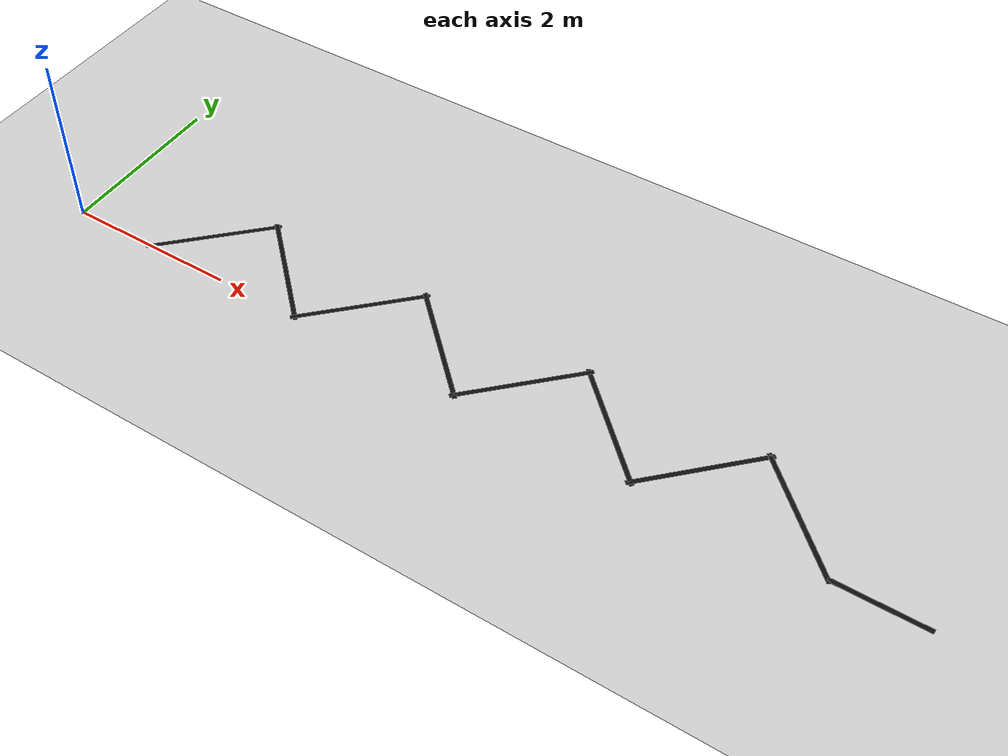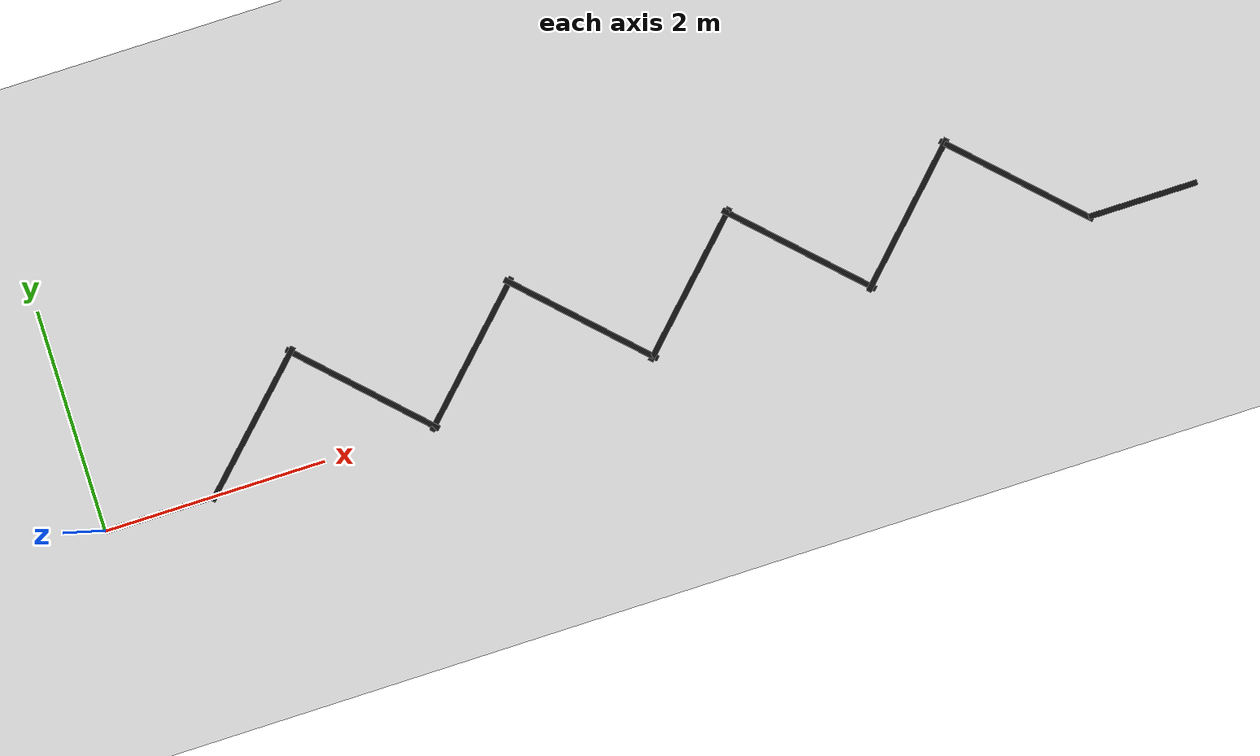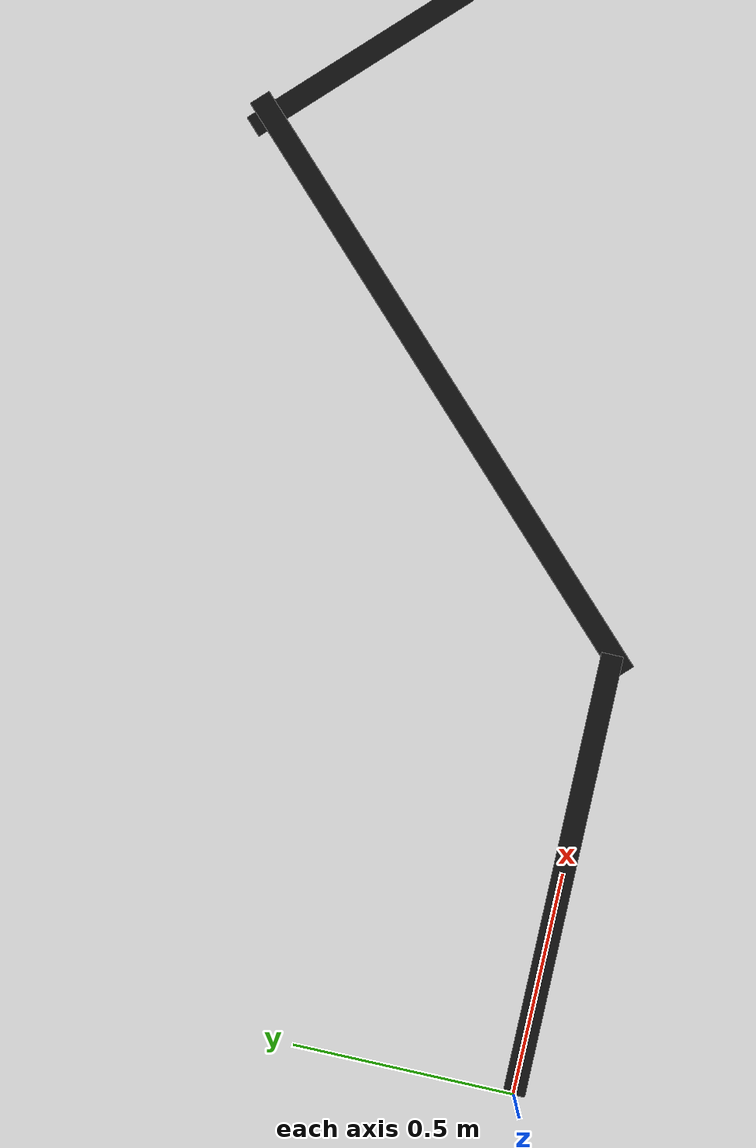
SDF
<?xml version="1.0"?>
<sdf version="1.6">
  <world name="zigzag">

    <include>
      <uri>model://ground_plane</uri>
    </include>

    <include>
      <uri>model://sun</uri>
    </include>

    <!-- Opening straight -->
    <model name="zz_start">
      <static>true</static>
      <pose>0.5 0 0.001 0 0 0</pose>
      <link name="link">
        <visual name="visual">
          <geometry><box><size>1.0 0.05 0.001</size></box></geometry>
          <material>
            <ambient>0.05 0.05 0.05 1</ambient>
            <diffuse>0.05 0.05 0.05 1</diffuse>
          </material>
        </visual>
      </link>
    </model>

    <!-- Diagonal 1: (1,0) -> (2,1), centre (1.5, 0.5), yaw = +45 deg -->
    <model name="zz_d1">
      <static>true</static>
      <pose>1.5 0.5 0.001 0 0 0.7854</pose>
      <link name="link">
        <visual name="visual">
          <geometry><box><size>1.51 0.05 0.001</size></box></geometry>
          <material>
            <ambient>0.05 0.05 0.05 1</ambient>
            <diffuse>0.05 0.05 0.05 1</diffuse>
          </material>
        </visual>
      </link>
    </model>

    <!-- Diagonal 2: (2,1) -> (3,0), centre (2.5, 0.5), yaw = -45 deg -->
    <model name="zz_d2">
      <static>true</static>
      <pose>2.5 0.5 0.001 0 0 -0.7854</pose>
      <link name="link">
        <visual name="visual">
          <geometry><box><size>1.51 0.05 0.001</size></box></geometry>
          <material>
            <ambient>0.05 0.05 0.05 1</ambient>
            <diffuse>0.05 0.05 0.05 1</diffuse>
          </material>
        </visual>
      </link>
    </model>

    <!-- Diagonal 3: (3,0) -> (4,1), centre (3.5, 0.5), yaw = +45 deg -->
    <model name="zz_d3">
      <static>true</static>
      <pose>3.5 0.5 0.001 0 0 0.7854</pose>
      <link name="link">
        <visual name="visual">
          <geometry><box><size>1.51 0.05 0.001</size></box></geometry>
          <material>
            <ambient>0.05 0.05 0.05 1</ambient>
            <diffuse>0.05 0.05 0.05 1</diffuse>
          </material>
        </visual>
      </link>
    </model>

    <!-- Diagonal 4: (4,1) -> (5,0), centre (4.5, 0.5), yaw = -45 deg -->
    <model name="zz_d4">
      <static>true</static>
      <pose>4.5 0.5 0.001 0 0 -0.7854</pose>
      <link name="link">
        <visual name="visual">
          <geometry><box><size>1.51 0.05 0.001</size></box></geometry>
          <material>
            <ambient>0.05 0.05 0.05 1</ambient>
            <diffuse>0.05 0.05 0.05 1</diffuse>
          </material>
        </visual>
      </link>
    </model>

    <!-- Diagonal 5: (5,0) -> (6,1), centre (5.5, 0.5), yaw = +45 deg -->
    <model name="zz_d5">
      <static>true</static>
      <pose>5.5 0.5 0.001 0 0 0.7854</pose>
      <link name="link">
        <visual name="visual">
          <geometry><box><size>1.51 0.05 0.001</size></box></geometry>
          <material>
            <ambient>0.05 0.05 0.05 1</ambient>
            <diffuse>0.05 0.05 0.05 1</diffuse>
          </material>
        </visual>
      </link>
    </model>

    <!-- Diagonal 6: (6,1) -> (7,0), centre (6.5, 0.5), yaw = -45 deg -->
    <model name="zz_d6">
      <static>true</static>
      <pose>6.5 0.5 0.001 0 0 -0.7854</pose>
      <link name="link">
        <visual name="visual">
          <geometry><box><size>1.51 0.05 0.001</size></box></geometry>
          <material>
            <ambient>0.05 0.05 0.05 1</ambient>
            <diffuse>0.05 0.05 0.05 1</diffuse>
          </material>
        </visual>
      </link>
    </model>

    <!-- Diagonal 7: (7,0) -> (8,1), centre (7.5, 0.5), yaw = +45 deg -->
    <model name="zz_d7">
      <static>true</static>
      <pose>7.5 0.5 0.001 0 0 0.7854</pose>
      <link name="link">
        <visual name="visual">
          <geometry><box><size>1.51 0.05 0.001</size></box></geometry>
          <material>
            <ambient>0.05 0.05 0.05 1</ambient>
            <diffuse>0.05 0.05 0.05 1</diffuse>
          </material>
        </visual>
      </link>
    </model>

    <!-- Diagonal 8: (8,1) -> (9,0), centre (8.5, 0.5), yaw = -45 deg -->
    <model name="zz_d8">
      <static>true</static>
      <pose>8.5 0.5 0.001 0 0 -0.7854</pose>
      <link name="link">
        <visual name="visual">
          <geometry><box><size>1.51 0.05 0.001</size></box></geometry>
          <material>
            <ambient>0.05 0.05 0.05 1</ambient>
            <diffuse>0.05 0.05 0.05 1</diffuse>
          </material>
        </visual>
      </link>
    </model>

    <!-- Closing straight -->
    <model name="zz_end">
      <static>true</static>
      <pose>9.5 0 0.001 0 0 0</pose>
      <link name="link">
        <visual name="visual">
          <geometry><box><size>1.0 0.05 0.001</size></box></geometry>
          <material>
            <ambient>0.05 0.05 0.05 1</ambient>
            <diffuse>0.05 0.05 0.05 1</diffuse>
          </material>
        </visual>
      </link>
    </model>

  </world>
</sdf>
